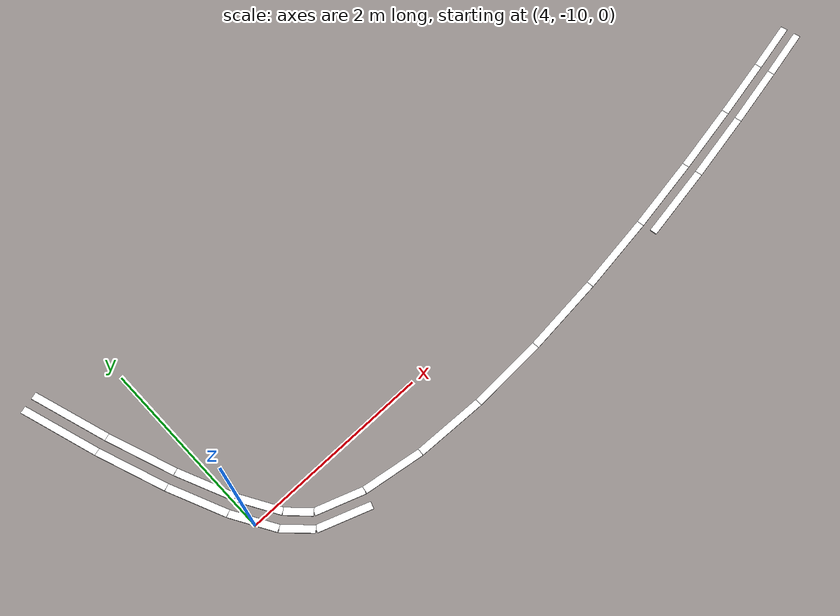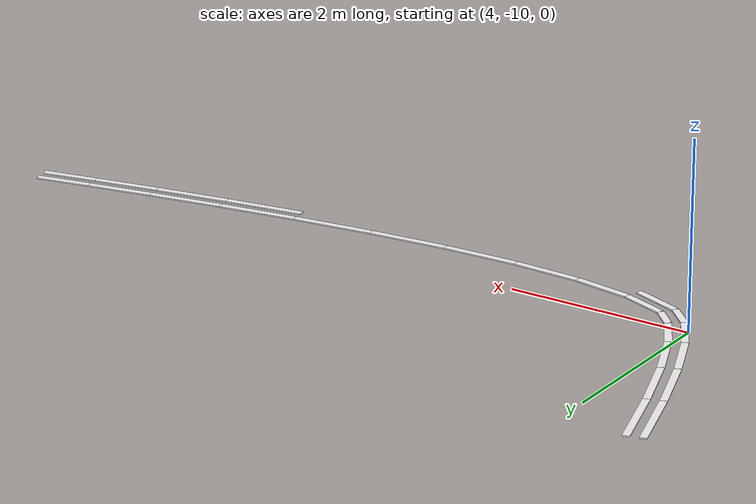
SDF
<sdf version="1.9">
 <world name="igvc_competition">
  <model name="Line_002_0280">
   <static>1</static>
   <pose>3.4063 -7.9672 0.011 0 0 -1.270239</pose>
   <link name="link">
    <visual name="visual">
     <geometry><box><size>0.8610 0.0762 0.012</size></box></geometry>
     <material>
      <ambient>0.98 0.98 0.98 1</ambient>
      <diffuse>0.98 0.98 0.98 1</diffuse>
      <specular>0.05 0.05 0.05 1</specular>
      <emissive>0.9 0.9 0.9 1</emissive>
     </material>
    </visual>
   </link>
  </model>
  <model name="Line_002_0281">
   <static>1</static>
   <pose>3.2501 -8.0146 0.011 0 0 -1.270210</pose>
   <link name="link">
    <visual name="visual">
     <geometry><box><size>0.8667 0.0762 0.012</size></box></geometry>
     <material>
      <ambient>0.98 0.98 0.98 1</ambient>
      <diffuse>0.98 0.98 0.98 1</diffuse>
      <specular>0.05 0.05 0.05 1</specular>
      <emissive>0.9 0.9 0.9 1</emissive>
     </material>
    </visual>
   </link>
  </model>
  <model name="Line_002_0282">
   <static>1</static>
   <pose>3.6615 -8.7361 0.011 0 0 -1.227941</pose>
   <link name="link">
    <visual name="visual">
     <geometry><box><size>0.7597 0.0762 0.012</size></box></geometry>
     <material>
      <ambient>0.98 0.98 0.98 1</ambient>
      <diffuse>0.98 0.98 0.98 1</diffuse>
      <specular>0.05 0.05 0.05 1</specular>
      <emissive>0.9 0.9 0.9 1</emissive>
     </material>
    </visual>
   </link>
  </model>
  <model name="Line_002_0283">
   <static>1</static>
   <pose>3.5075 -8.7901 0.011 0 0 -1.227878</pose>
   <link name="link">
    <visual name="visual">
     <geometry><box><size>0.7679 0.0762 0.012</size></box></geometry>
     <material>
      <ambient>0.98 0.98 0.98 1</ambient>
      <diffuse>0.98 0.98 0.98 1</diffuse>
      <specular>0.05 0.05 0.05 1</specular>
      <emissive>0.9 0.9 0.9 1</emissive>
     </material>
    </visual>
   </link>
  </model>
  <model name="Line_002_0284">
   <static>1</static>
   <pose>3.9135 -9.3826 0.011 0 0 -1.164150</pose>
   <link name="link">
    <visual name="visual">
     <geometry><box><size>0.6288 0.0762 0.012</size></box></geometry>
     <material>
      <ambient>0.98 0.98 0.98 1</ambient>
      <diffuse>0.98 0.98 0.98 1</diffuse>
      <specular>0.05 0.05 0.05 1</specular>
      <emissive>0.9 0.9 0.9 1</emissive>
     </material>
    </visual>
   </link>
  </model>
  <model name="Line_002_0285">
   <static>1</static>
   <pose>3.7637 -9.4466 0.011 0 0 -1.163922</pose>
   <link name="link">
    <visual name="visual">
     <geometry><box><size>0.6423 0.0762 0.012</size></box></geometry>
     <material>
      <ambient>0.98 0.98 0.98 1</ambient>
      <diffuse>0.98 0.98 0.98 1</diffuse>
      <specular>0.05 0.05 0.05 1</specular>
      <emissive>0.9 0.9 0.9 1</emissive>
     </material>
    </visual>
   </link>
  </model>
  <model name="Line_002_0286">
   <static>1</static>
   <pose>4.1539 -9.8745 0.011 0 0 -1.052048</pose>
   <link name="link">
    <visual name="visual">
     <geometry><box><size>0.4677 0.0762 0.012</size></box></geometry>
     <material>
      <ambient>0.98 0.98 0.98 1</ambient>
      <diffuse>0.98 0.98 0.98 1</diffuse>
      <specular>0.05 0.05 0.05 1</specular>
      <emissive>0.9 0.9 0.9 1</emissive>
     </material>
    </visual>
   </link>
  </model>
  <model name="Line_002_0287">
   <static>1</static>
   <pose>4.0145 -9.9570 0.011 0 0 -1.049503</pose>
   <link name="link">
    <visual name="visual">
     <geometry><box><size>0.4968 0.0762 0.012</size></box></geometry>
     <material>
      <ambient>0.98 0.98 0.98 1</ambient>
      <diffuse>0.98 0.98 0.98 1</diffuse>
      <specular>0.05 0.05 0.05 1</specular>
      <emissive>0.9 0.9 0.9 1</emissive>
     </material>
    </visual>
   </link>
  </model>
  <model name="Line_002_0288">
   <static>1</static>
   <pose>4.3704 -10.1800 0.011 0 0 -0.794265</pose>
   <link name="link">
    <visual name="visual">
     <geometry><box><size>0.2871 0.0762 0.012</size></box></geometry>
     <material>
      <ambient>0.98 0.98 0.98 1</ambient>
      <diffuse>0.98 0.98 0.98 1</diffuse>
      <specular>0.05 0.05 0.05 1</specular>
      <emissive>0.9 0.9 0.9 1</emissive>
     </material>
    </visual>
   </link>
  </model>
  <model name="Line_002_0289">
   <static>1</static>
   <pose>4.2590 -10.2934 0.011 0 0 -0.786432</pose>
   <link name="link">
    <visual name="visual">
     <geometry><box><size>0.3420 0.0762 0.012</size></box></geometry>
     <material>
      <ambient>0.98 0.98 0.98 1</ambient>
      <diffuse>0.98 0.98 0.98 1</diffuse>
      <specular>0.05 0.05 0.05 1</specular>
      <emissive>0.9 0.9 0.9 1</emissive>
     </material>
    </visual>
   </link>
  </model>
  <model name="Line_002_0290">
   <static>1</static>
   <pose>4.7097 -10.3703 0.011 0 0 -0.352835</pose>
   <link name="link">
    <visual name="visual">
     <geometry><box><size>0.5087 0.0762 0.012</size></box></geometry>
     <material>
      <ambient>0.98 0.98 0.98 1</ambient>
      <diffuse>0.98 0.98 0.98 1</diffuse>
      <specular>0.05 0.05 0.05 1</specular>
      <emissive>0.9 0.9 0.9 1</emissive>
     </material>
    </visual>
   </link>
  </model>
  <model name="Line_002_0291">
   <static>1</static>
   <pose>4.6419 -10.5127 0.011 0 0 -0.358415</pose>
   <link name="link">
    <visual name="visual">
     <geometry><box><size>0.5599 0.0762 0.012</size></box></geometry>
     <material>
      <ambient>0.98 0.98 0.98 1</ambient>
      <diffuse>0.98 0.98 0.98 1</diffuse>
      <specular>0.05 0.05 0.05 1</specular>
      <emissive>0.9 0.9 0.9 1</emissive>
     </material>
    </visual>
   </link>
  </model>
  <model name="Line_002_0292">
   <static>1</static>
   <pose>5.2622 -10.5084 0.011 0 0 -0.158475</pose>
   <link name="link">
    <visual name="visual">
     <geometry><box><size>0.6356 0.0762 0.012</size></box></geometry>
     <material>
      <ambient>0.98 0.98 0.98 1</ambient>
      <diffuse>0.98 0.98 0.98 1</diffuse>
      <specular>0.05 0.05 0.05 1</specular>
      <emissive>0.9 0.9 0.9 1</emissive>
     </material>
    </visual>
   </link>
  </model>
  <model name="Line_002_0294">
   <static>1</static>
   <pose>5.9458 -10.5739 0.011 0 0 -0.041761</pose>
   <link name="link">
    <visual name="visual">
     <geometry><box><size>0.7401 0.0762 0.012</size></box></geometry>
     <material>
      <ambient>0.98 0.98 0.98 1</ambient>
      <diffuse>0.98 0.98 0.98 1</diffuse>
      <specular>0.05 0.05 0.05 1</specular>
      <emissive>0.9 0.9 0.9 1</emissive>
     </material>
    </visual>
   </link>
  </model>
  <model name="Line_002_0296">
   <static>1</static>
   <pose>6.7240 -10.5758 0.011 0 0 0.033158</pose>
   <link name="link">
    <visual name="visual">
     <geometry><box><size>0.8174 0.0762 0.012</size></box></geometry>
     <material>
      <ambient>0.98 0.98 0.98 1</ambient>
      <diffuse>0.98 0.98 0.98 1</diffuse>
      <specular>0.05 0.05 0.05 1</specular>
      <emissive>0.9 0.9 0.9 1</emissive>
     </material>
    </visual>
   </link>
  </model>
  <model name="Line_002_0298">
   <static>1</static>
   <pose>7.5629 -10.5258 0.011 0 0 0.084718</pose>
   <link name="link">
    <visual name="visual">
     <geometry><box><size>0.8639 0.0762 0.012</size></box></geometry>
     <material>
      <ambient>0.98 0.98 0.98 1</ambient>
      <diffuse>0.98 0.98 0.98 1</diffuse>
      <specular>0.05 0.05 0.05 1</specular>
      <emissive>0.9 0.9 0.9 1</emissive>
     </material>
    </visual>
   </link>
  </model>
  <model name="Line_002_0300">
   <static>1</static>
   <pose>8.4291 -10.4358 0.011 0 0 0.121925</pose>
   <link name="link">
    <visual name="visual">
     <geometry><box><size>0.8781 0.0762 0.012</size></box></geometry>
     <material>
      <ambient>0.98 0.98 0.98 1</ambient>
      <diffuse>0.98 0.98 0.98 1</diffuse>
      <specular>0.05 0.05 0.05 1</specular>
      <emissive>0.9 0.9 0.9 1</emissive>
     </material>
    </visual>
   </link>
  </model>
  <model name="Line_002_0302">
   <static>1</static>
   <pose>9.2898 -10.3184 0.011 0 0 0.149517</pose>
   <link name="link">
    <visual name="visual">
     <geometry><box><size>0.8593 0.0762 0.012</size></box></geometry>
     <material>
      <ambient>0.98 0.98 0.98 1</ambient>
      <diffuse>0.98 0.98 0.98 1</diffuse>
      <specular>0.05 0.05 0.05 1</specular>
      <emissive>0.9 0.9 0.9 1</emissive>
     </material>
    </visual>
   </link>
  </model>
  <model name="Line_002_0303">
   <static>1</static>
   <pose>9.3128 -10.4747 0.011 0 0 0.149514</pose>
   <link name="link">
    <visual name="visual">
     <geometry><box><size>0.8633 0.0762 0.012</size></box></geometry>
     <material>
      <ambient>0.98 0.98 0.98 1</ambient>
      <diffuse>0.98 0.98 0.98 1</diffuse>
      <specular>0.05 0.05 0.05 1</specular>
      <emissive>0.9 0.9 0.9 1</emissive>
     </material>
    </visual>
   </link>
  </model>
  <model name="Line_002_0304">
   <static>1</static>
   <pose>10.1122 -10.1860 0.011 0 0 0.170365</pose>
   <link name="link">
    <visual name="visual">
     <geometry><box><size>0.8069 0.0762 0.012</size></box></geometry>
     <material>
      <ambient>0.98 0.98 0.98 1</ambient>
      <diffuse>0.98 0.98 0.98 1</diffuse>
      <specular>0.05 0.05 0.05 1</specular>
      <emissive>0.9 0.9 0.9 1</emissive>
     </material>
    </visual>
   </link>
  </model>
  <model name="Line_002_0305">
   <static>1</static>
   <pose>10.1388 -10.3417 0.011 0 0 0.170324</pose>
   <link name="link">
    <visual name="visual">
     <geometry><box><size>0.8100 0.0762 0.012</size></box></geometry>
     <material>
      <ambient>0.98 0.98 0.98 1</ambient>
      <diffuse>0.98 0.98 0.98 1</diffuse>
      <specular>0.05 0.05 0.05 1</specular>
      <emissive>0.9 0.9 0.9 1</emissive>
     </material>
    </visual>
   </link>
  </model>
  <model name="Line_002_0306">
   <static>1</static>
   <pose>10.8639 -10.0511 0.011 0 0 0.185774</pose>
   <link name="link">
    <visual name="visual">
     <geometry><box><size>0.7206 0.0762 0.012</size></box></geometry>
     <material>
      <ambient>0.98 0.98 0.98 1</ambient>
      <diffuse>0.98 0.98 0.98 1</diffuse>
      <specular>0.05 0.05 0.05 1</specular>
      <emissive>0.9 0.9 0.9 1</emissive>
     </material>
    </visual>
   </link>
  </model>
  <model name="Line_002_0307">
   <static>1</static>
   <pose>10.8932 -10.2064 0.011 0 0 0.185781</pose>
   <link name="link">
    <visual name="visual">
     <geometry><box><size>0.7227 0.0762 0.012</size></box></geometry>
     <material>
      <ambient>0.98 0.98 0.98 1</ambient>
      <diffuse>0.98 0.98 0.98 1</diffuse>
      <specular>0.05 0.05 0.05 1</specular>
      <emissive>0.9 0.9 0.9 1</emissive>
     </material>
    </visual>
   </link>
  </model>
  <model name="Line_002_0308">
   <static>1</static>
   <pose>11.5124 -9.9260 0.011 0 0 0.196154</pose>
   <link name="link">
    <visual name="visual">
     <geometry><box><size>0.6003 0.0762 0.012</size></box></geometry>
     <material>
      <ambient>0.98 0.98 0.98 1</ambient>
      <diffuse>0.98 0.98 0.98 1</diffuse>
      <specular>0.05 0.05 0.05 1</specular>
      <emissive>0.9 0.9 0.9 1</emissive>
     </material>
    </visual>
   </link>
  </model>
  <model name="Line_002_0309">
   <static>1</static>
   <pose>11.5433 -10.0809 0.011 0 0 0.196287</pose>
   <link name="link">
    <visual name="visual">
     <geometry><box><size>0.6014 0.0762 0.012</size></box></geometry>
     <material>
      <ambient>0.98 0.98 0.98 1</ambient>
      <diffuse>0.98 0.98 0.98 1</diffuse>
      <specular>0.05 0.05 0.05 1</specular>
      <emissive>0.9 0.9 0.9 1</emissive>
     </material>
    </visual>
   </link>
  </model>
 </world>
</sdf>
